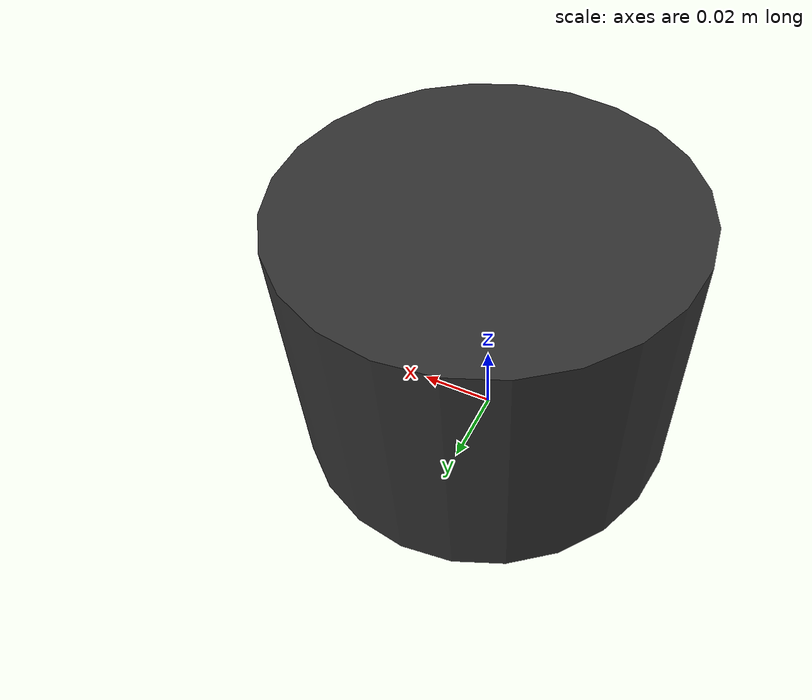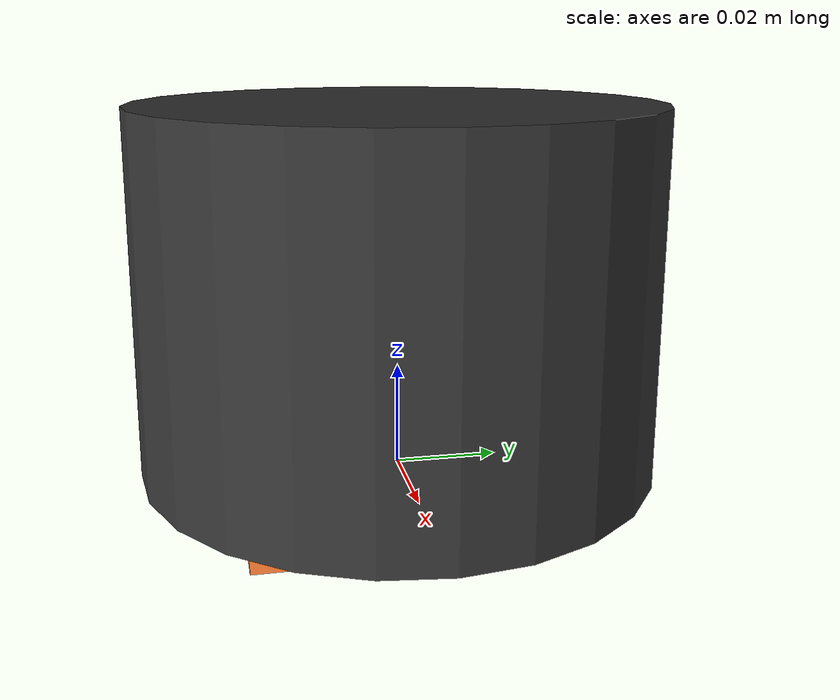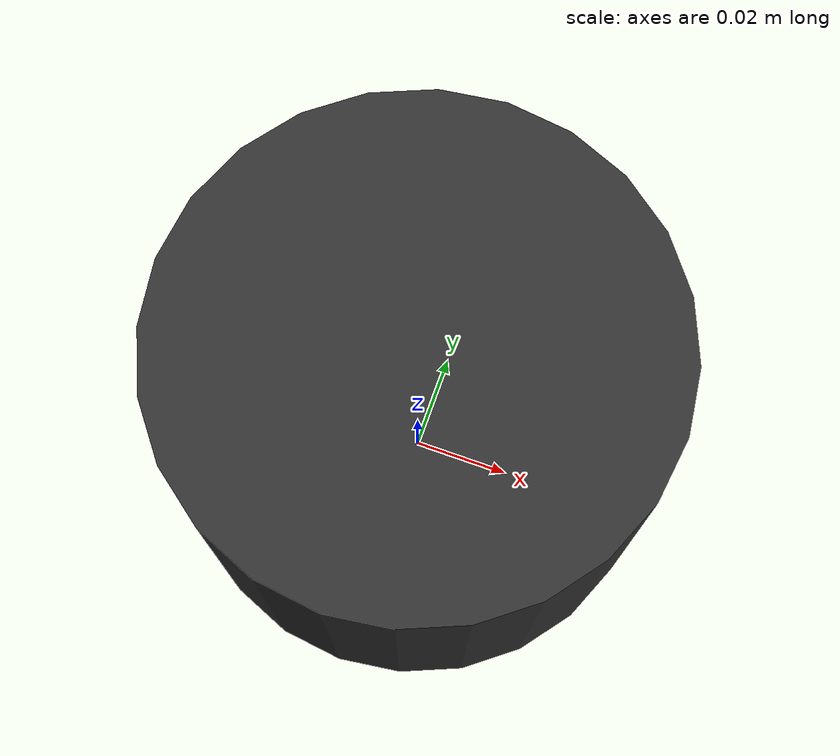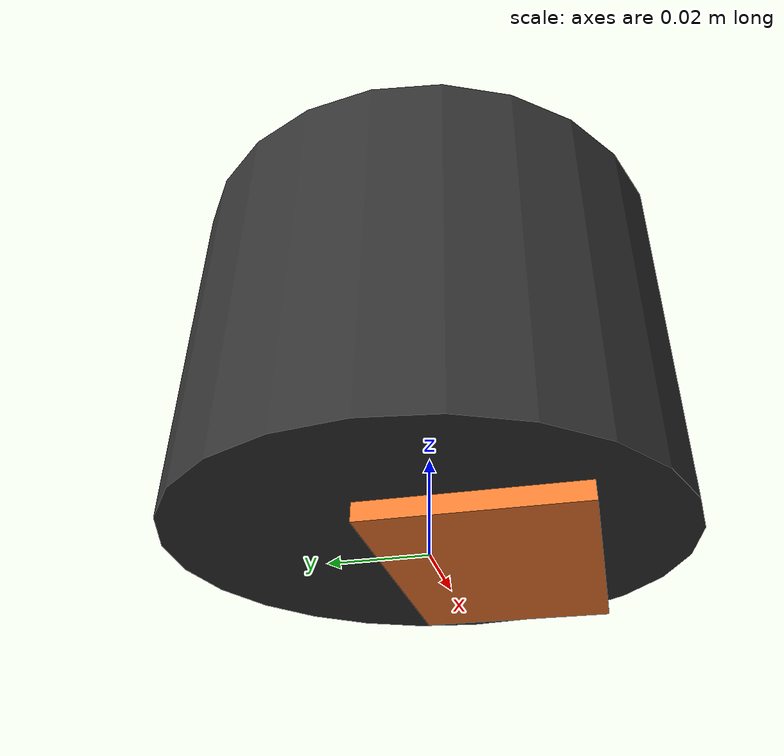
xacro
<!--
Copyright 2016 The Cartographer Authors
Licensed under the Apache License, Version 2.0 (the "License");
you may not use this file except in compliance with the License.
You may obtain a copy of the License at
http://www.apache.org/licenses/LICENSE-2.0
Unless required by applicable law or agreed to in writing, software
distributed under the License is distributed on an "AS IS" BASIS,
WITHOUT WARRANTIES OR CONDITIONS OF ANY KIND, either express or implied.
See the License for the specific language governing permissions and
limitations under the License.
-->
<?xml version="1.0"?>
<!--Ouster OS1 sensor-->
<robot name="os1_sensor" xmlns:xacro="http://www.ros.org/wiki/xacro">

  <!-- Import all Gazebo-customization elements, including Gazebo colors -->
  <xacro:include filename="$(find hyrecro)/urdf/os1_sensors.gazebo" />
  <xacro:include filename="$(find hyrecro)/urdf/os1_materials.gazebo" />
  <!-- Import Rviz colors -->

  <material name="orange">
    <color rgba="1.0 0.5 0.2 1" />
  </material>
  <material name="gray">
    <color rgba="0.2 0.2 0.2 1" />
  </material>

<!--LINKS DESCRIPTION-->

  <link name="world"/>
  <link name="os1_sensor"/>
  <link name="base_link"/>

  <link name="os1_imu">
      <visual>
        <origin xyz="0.0 0.0 0.0" />
        <geometry>
          <box size="0.06 0.04 0.02" />
        </geometry>
        <material name="orange" />
      </visual>
  </link>

  <link name="os1_lidar">
      <visual>
        <origin xyz="0.0 0.0 0.0" />
        <geometry>
          <cylinder length="0.07" radius="0.05" />
        </geometry>
        <material name="gray" />
      </visual>
  </link>

<!--JOINTS DESCRIPTION-->
  <joint name="world" type="fixed">
    <parent link="world" />
    <child link="base_link" />
    <origin xyz="0 0 0" rpy="0 0 0" />
  </joint>

  <joint name="sensor_link_joint" type="fixed">
    <parent link="base_link" />
    <child link="os1_sensor" />
    <origin xyz="0 0 0" rpy="0 0 0" />
  </joint>

  <joint name="imu_link_joint" type="fixed">
    <parent link="os1_sensor" />
    <child link="os1_imu" />
    <origin xyz="0.006253 -0.011775 0.007645" rpy="0 0 0" />
  </joint>

  <joint name="os1_link_joint" type="fixed">
    <parent link="os1_sensor" />
    <child link="os1_lidar" />
    <origin xyz="0.0 0.0 0.03618" rpy="0 0 3.14159" />
  </joint>

</robot>
